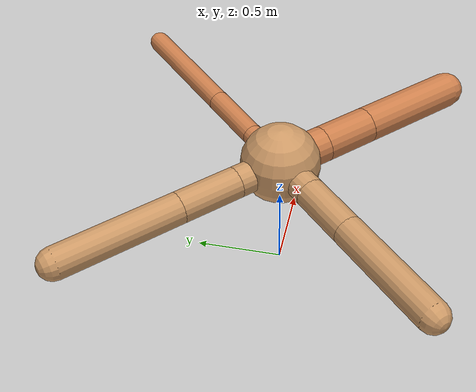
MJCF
<?xml version="1.0" ?>
<mujoco model="ant">

	<compiler angle="degree" coordinate="local" inertiafromgeom="true"/>

	<option integrator="RK4" timestep="0.01"/>

	<custom>

		<numeric data="0.0 0.0 0.55 1.0 0.0 0.0 0.0 0.0 1.0 0.0 -1.0 0.0 -1.0 0.0 1.0" name="init_qpos"/>

	</custom>

	<default>

		<joint armature="1" damping="1" limited="true"/>

		<geom conaffinity="0" condim="3" density="5.0" friction="1.5 0.1 0.1" margin="0.01" rgba="0.8 0.6 0.4 1"/>

	</default>

	<worldbody>

		<body name="torso" pos="0 0 0.75">

			<geom name="torso_geom" pos="0 0 0" size="0.22253698418192208" type="sphere"/>

			<!--joint armature="0" damping="0" limited="false" margin="0.01" name="root" pos="0 0 0" type="free"/-->

			<body name="front_left_leg" pos="0 0 0">

				<geom fromto="0 0 0 0.2 0.2 0" name="aux_1_geom" size="0.0610074324791038" type="capsule" rgba=".8 .5 .3 1"/>

				<body name="aux_1" pos="0.2 0.2 0">

					<joint axis="0 0 1" name="hip_1" pos="0.0 0.0 0.0" range="-40 40" type="hinge"/>

					<geom fromto="0 0 0 0.2610251757702901 0.2610251757702901 0" name="left_leg_geom" size="0.0610074324791038" type="capsule" rgba=".8 .5 .3 1"/>

					<body pos="0.2610251757702901 0.2610251757702901 0" name="front_left_foot">

						<joint axis="-1 1 0" name="ankle_1" pos="0.0 0.0 0.0" range="30 100" type="hinge"/>

						<geom fromto="0 0 0 0.5220503515405802 0.5220503515405802 0" name="left_ankle_geom" size="0.0610074324791038" type="capsule" rgba=".8 .5 .3 1"/>

					</body>

				</body>

			</body>

			<body name="front_right_leg" pos="0 0 0">

				<geom fromto="0 0 0 -0.2 0.2 0" name="aux_2_geom" size="0.08697396556654637" type="capsule"/>

				<body name="aux_2" pos="-0.2 0.2 0">

					<joint axis="0 0 1" name="hip_2" pos="0.0 0.0 0.0" range="-40 40" type="hinge"/>

					<geom fromto="0 0 0 -0.2438023587050772 0.2438023587050772 0" name="right_leg_geom" size="0.08697396556654637" type="capsule"/>

					<body pos="-0.2438023587050772 0.2438023587050772 0" name="front_right_foot">

						<joint axis="1 1 0" name="ankle_2" pos="0.0 0.0 0.0" range="-100 -30" type="hinge"/>

						<geom fromto="0 0 0 -0.4876047174101544 0.4876047174101544 0" name="right_ankle_geom" size="0.08697396556654637" type="capsule"/>

					</body>

				</body>

			</body>

			<body name="left_back_leg" pos="0 0 0">

				<geom fromto="0 0 0 -0.2 -0.2 0" name="aux_3_geom" size="0.08609349034241096" type="capsule"/>

				<body name="aux_3" pos="-0.2 -0.2 0">

					<joint axis="0 0 1" name="hip_3" pos="0.0 0.0 0.0" range="-40 40" type="hinge"/>

					<geom fromto="0 0 0 -0.2274287143500482 -0.2274287143500482 0" name="back_leg_geom" size="0.08609349034241096" type="capsule"/>

					<body pos="-0.2274287143500482 -0.2274287143500482 0" name="left_back_foot">

						<joint axis="-1 1 0" name="ankle_3" pos="0.0 0.0 0.0" range="-100 -30" type="hinge"/>

						<geom fromto="0 0 0 -0.4548574287000964 -0.4548574287000964 0" name="third_ankle_geom" size="0.08609349034241096" type="capsule"/>

					</body>

				</body>

			</body>

			<body name="right_back_leg" pos="0 0 0">

				<geom fromto="0 0 0 0.2 -0.2 0" name="aux_4_geom" size="0.10193282555183347" type="capsule" rgba=".8 .5 .3 1"/>

				<body name="aux_4" pos="0.2 -0.2 0">

					<joint axis="0 0 1" name="hip_4" pos="0.0 0.0 0.0" range="-40 40" type="hinge"/>

					<geom fromto="0 0 0 0.21298636367096782 -0.21298636367096782 0" name="rightback_leg_geom" size="0.10193282555183347" type="capsule" rgba=".8 .5 .3 1"/>

					<body pos="0.21298636367096782 -0.21298636367096782 0" name="right_back_foot">

						<joint axis="1 1 0" name="ankle_4" pos="0.0 0.0 0.0" range="30 100" type="hinge"/>

						<geom fromto="0 0 0 0.42597272734193564 -0.42597272734193564 0" name="fourth_ankle_geom" size="0.10193282555183347" type="capsule" rgba=".8 .5 .3 1"/>

					</body>

				</body>

			</body>

		</body>

	</worldbody>

	<actuator>

		<motor ctrllimited="true" ctrlrange="-1.0 1.0" joint="hip_4" gear="150"/>

		<motor ctrllimited="true" ctrlrange="-1.0 1.0" joint="ankle_4" gear="150"/>

		<motor ctrllimited="true" ctrlrange="-1.0 1.0" joint="hip_1" gear="150"/>

		<motor ctrllimited="true" ctrlrange="-1.0 1.0" joint="ankle_1" gear="150"/>

		<motor ctrllimited="true" ctrlrange="-1.0 1.0" joint="hip_2" gear="150"/>

		<motor ctrllimited="true" ctrlrange="-1.0 1.0" joint="ankle_2" gear="150"/>

		<motor ctrllimited="true" ctrlrange="-1.0 1.0" joint="hip_3" gear="150"/>

		<motor ctrllimited="true" ctrlrange="-1.0 1.0" joint="ankle_3" gear="150"/>

	</actuator>

</mujoco>
